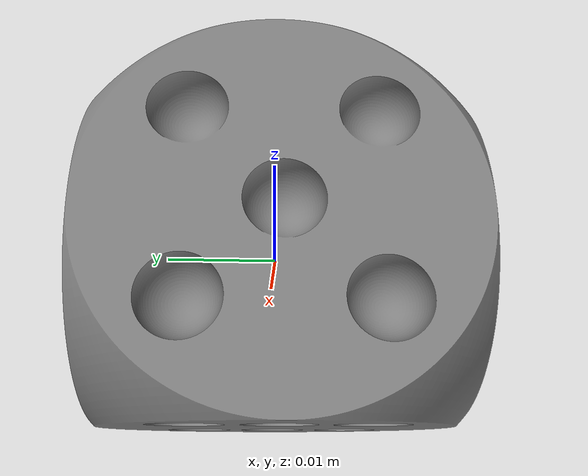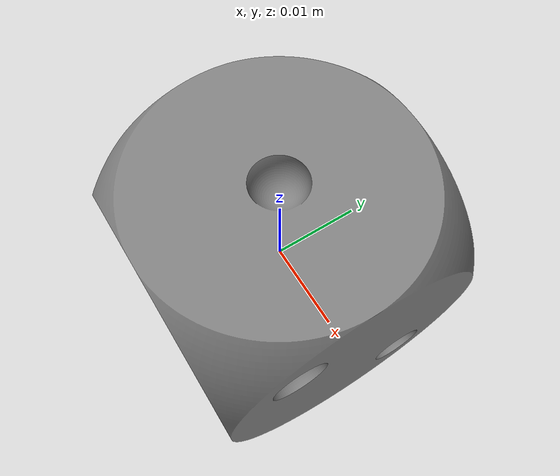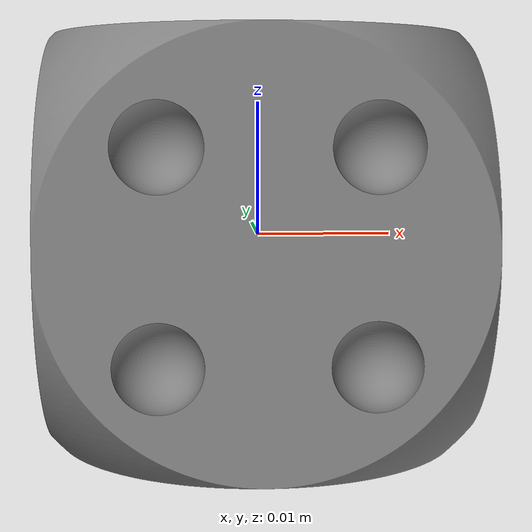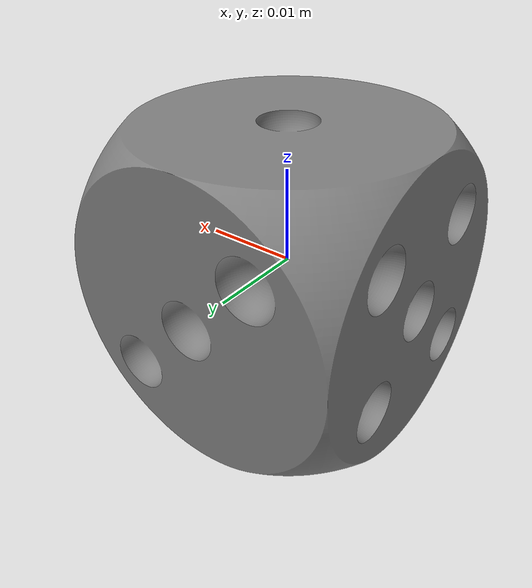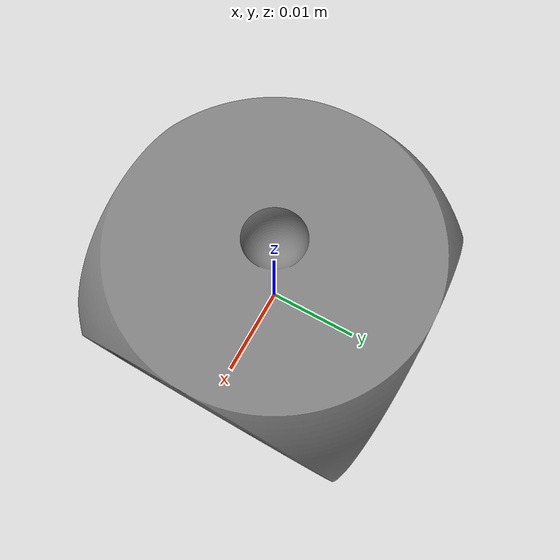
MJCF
<mujoco model="dice">
  <compiler angle="radian" meshdir="../meshes"/>

  <default>
    <!-- MATERIALS -->
    <default class="rigid_sticky">
      <geom solref="0.001 1"
            solimp="0.95 0.99 0.0005"
            friction="1.8 0.5 0.0005"/>
    </default>
    <default class="rigid_normal">
      <geom solref="0.001 1"
            solimp="0.95 0.99 0.0005"
            friction="1.0 0.3 0.0001"/>
    </default>
    <default class="rigid_slippy">
      <geom solref="0.001 1"
            solimp="0.95 0.99 0.0005"
            friction="0.6 0.2 0.0001"/>
    </default>
     <default class="custom">
      <geom solref="0.001 0.45"
            solimp="0.95 0.99 0.0005"
            friction="1.0 0.001 0.00001"/>
    </default>
  </default>

  <asset>
    <mesh name="body" file="dice.STL" />
  </asset>
  <worldbody>
    <body name="base_link" pos="0 0 0">
    <joint name="root" type="free" damping="0.00003"/>
    <!-- Inertial properties computed automatically from mesh -->
    <geom
      type="mesh"
      class="rigid_normal"
      mesh="body"
      mass="0.018"
      contype="1"
      conaffinity="1"
      group="1"
      density="0"/>
    </body>
  </worldbody>

  <!-- State sensors for state estimation simulation -->
  <sensor>
    <subtreecom    name="subtreecom"    body="base_link"/>
    <subtreelinvel name="subtreelinvel" body="base_link"/>
    <subtreeangmom name="subtreeangmom" body="base_link"/>
  </sensor>

</mujoco>
